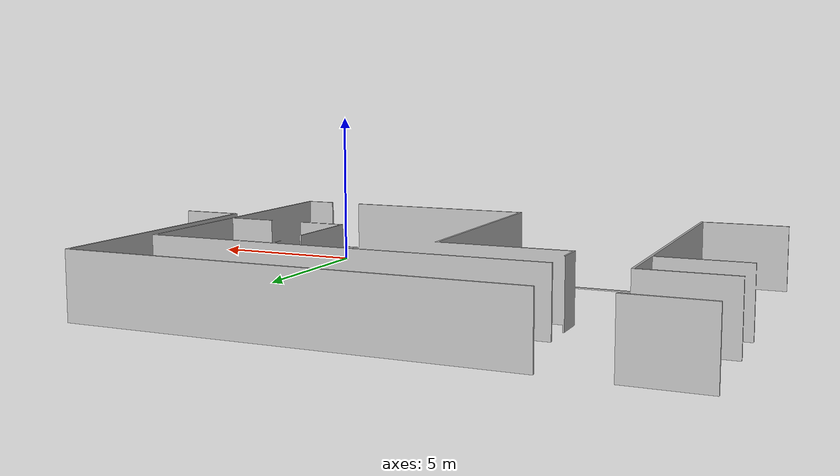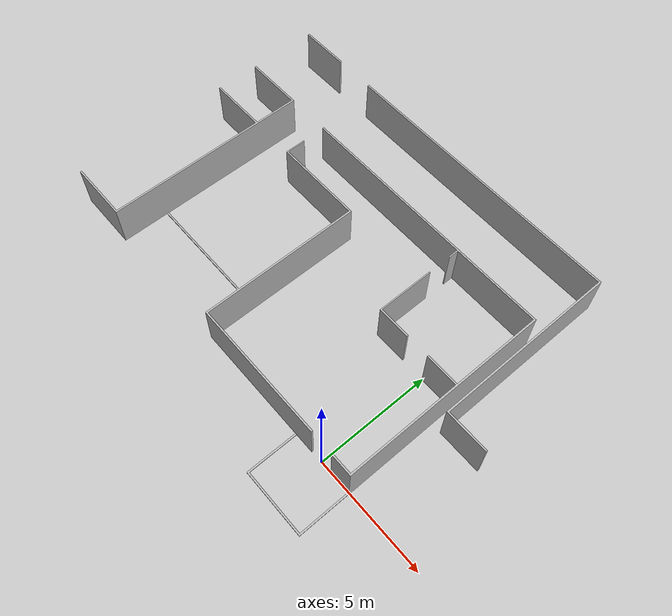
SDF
<?xml version="1.0"?>
<sdf version="1.6">
  <model name="rwc2018/walls">
    <link name="1_link">
      <collision name="1_col">
        <geometry>
          <mesh>
            <uri>model://rwc2018/walls/map_rwc2018_clean_small.stl</uri>
          </mesh>
        </geometry>
      </collision>
      <visual name="1_vis">
        <geometry>
          <mesh>
            <uri>model://rwc2018/walls/map_rwc2018_clean_small.stl</uri>
          </mesh>
        </geometry>
      </visual>
      <pose>0 0 0 0 0 0</pose>
    </link>
    <static>true</static>
  </model>
</sdf>
